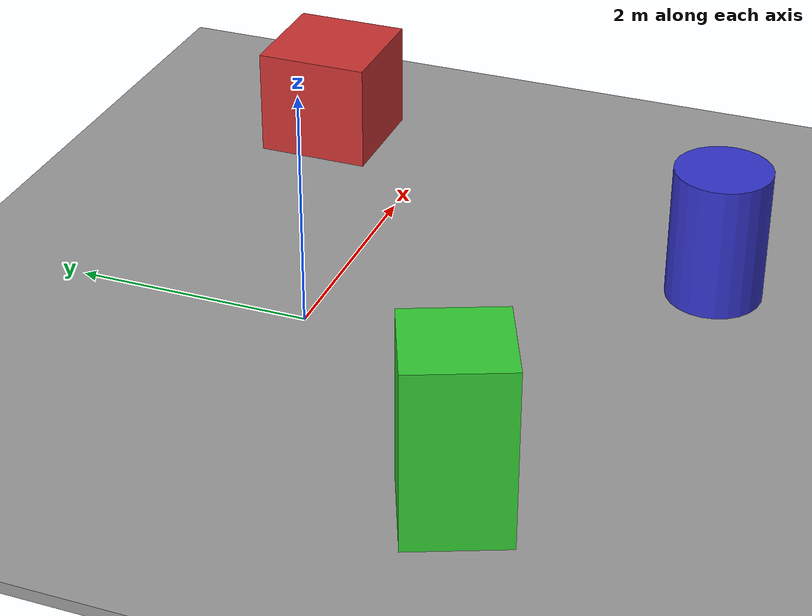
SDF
<?xml version="1.0" ?>
<sdf version="1.9">
  <world name="lidar_imu_world">

    <physics name="1ms" type="ignored">
      <max_step_size>0.001</max_step_size>
      <real_time_factor>1.0</real_time_factor>
    </physics>

    <plugin filename="ignition-gazebo-physics-system" name="gz::sim::systems::Physics"/>
    <plugin filename="ignition-gazebo-user-commands-system" name="gz::sim::systems::UserCommands"/>
    <plugin filename="ignition-gazebo-scene-broadcaster-system" name="gz::sim::systems::SceneBroadcaster"/>
    <plugin filename="ignition-gazebo-sensors-system" name="gz::sim::systems::Sensors">
      <render_engine>ogre2</render_engine>
    </plugin>
    <plugin filename="ignition-gazebo-imu-system" name="gz::sim::systems::Imu"/>

    <light type="directional" name="sun">
      <cast_shadows>true</cast_shadows>
      <pose>0 0 10 0 0 0</pose>
      <diffuse>0.8 0.8 0.8 1</diffuse>
      <specular>0.2 0.2 0.2 1</specular>
      <attenuation>
        <range>1000</range>
        <constant>0.9</constant>
        <linear>0.01</linear>
        <quadratic>0.001</quadratic>
      </attenuation>
      <direction>-0.5 0.1 -0.9</direction>
    </light>

    <model name="ground_plane">
      <static>true</static>
      <link name="link">
        <collision name="collision">
          <geometry>
            <box>
              <size>100 100 0.1</size>
            </box>
          </geometry>
          <surface>
            <friction>
              <ode>
                <mu>0.8</mu>
                <mu2>0.8</mu2>
              </ode>
            </friction>
          </surface>
        </collision>
        <visual name="visual">
          <geometry>
            <box>
              <size>100 100 0.1</size>
            </box>
          </geometry>
          <material>
            <ambient>0.5 0.5 0.5 1</ambient>
            <diffuse>0.6 0.6 0.6 1</diffuse>
            <specular>0.2 0.2 0.2 1</specular>
          </material>
        </visual>
      </link>
    </model>

    <!-- A handful of static obstacles so the 3D lidar has something to return -->
    <model name="box_1">
      <static>true</static>
      <pose>3 1 0.5 0 0 0</pose>
      <link name="link">
        <collision name="collision">
          <geometry><box><size>1 1 1</size></box></geometry>
        </collision>
        <visual name="visual">
          <geometry><box><size>1 1 1</size></box></geometry>
          <material><ambient>0.8 0.2 0.2 1</ambient><diffuse>0.8 0.2 0.2 1</diffuse></material>
        </visual>
      </link>
    </model>

    <model name="box_2">
      <static>true</static>
      <pose>-2 -2 0.75 0 0 0.4</pose>
      <link name="link">
        <collision name="collision">
          <geometry><box><size>0.8 0.8 1.5</size></box></geometry>
        </collision>
        <visual name="visual">
          <geometry><box><size>0.8 0.8 1.5</size></box></geometry>
          <material><ambient>0.2 0.8 0.2 1</ambient><diffuse>0.2 0.8 0.2 1</diffuse></material>
        </visual>
      </link>
    </model>

    <model name="cylinder_1">
      <static>true</static>
      <pose>1.5 -3 0.6 0 0 0</pose>
      <link name="link">
        <collision name="collision">
          <geometry><cylinder><radius>0.4</radius><length>1.2</length></cylinder></geometry>
        </collision>
        <visual name="visual">
          <geometry><cylinder><radius>0.4</radius><length>1.2</length></cylinder></geometry>
          <material><ambient>0.2 0.2 0.8 1</ambient><diffuse>0.2 0.2 0.8 1</diffuse></material>
        </visual>
      </link>
    </model>

  </world>
</sdf>
